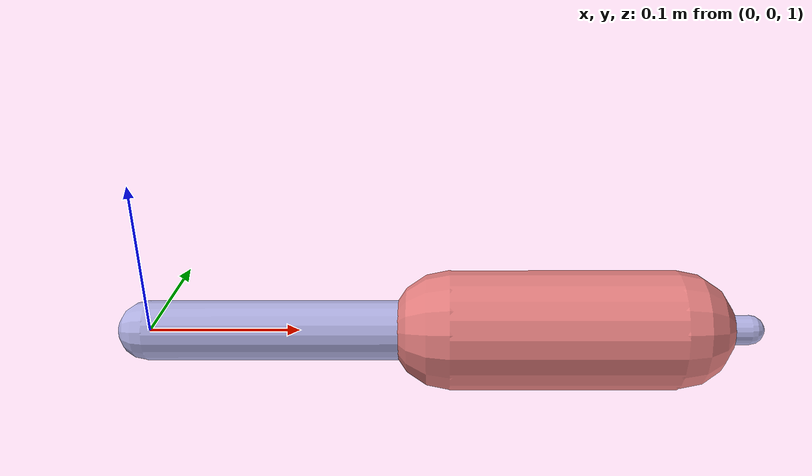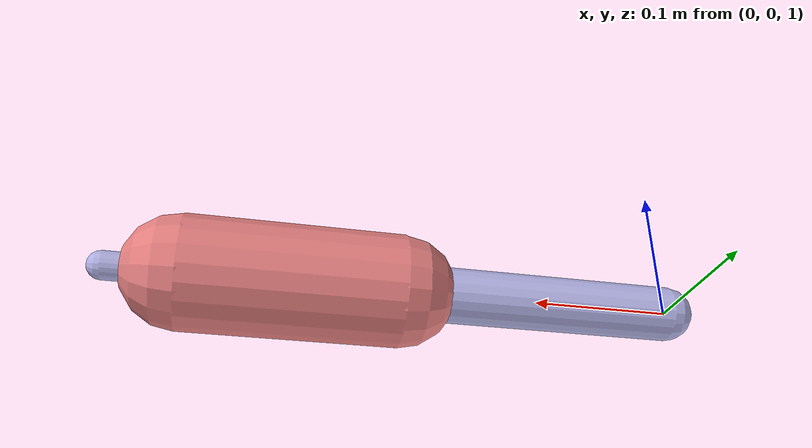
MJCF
<mujoco model="defaults_class_inheritance">
  <compiler angle="degree"/>
  <default>
    <default class="arm_defaults">
      <geom type="capsule" size="0.02" rgba="0.7 0.7 0.9 1"/>
      <joint type="hinge" damping="0.1"/>
      <default class="thick">
        <geom size="0.04" rgba="0.9 0.5 0.5 1"/>
      </default>
      <default class="thin">
        <geom size="0.01"/>
      </default>
    </default>
  </default>
  <worldbody>
    <body name="arm" childclass="arm_defaults" pos="0 0 1">
      <joint name="a0" axis="0 1 0"/>
      <geom name="link0" fromto="0 0 0 0.2 0 0"/>
      <body name="forearm" pos="0.2 0 0">
        <joint name="a1" axis="0 1 0" damping="0.2"/>
        <geom name="link1" class="thick" fromto="0 0 0 0.15 0 0"/>
        <geom name="tip" class="thin" fromto="0.15 0 0 0.2 0 0"/>
      </body>
    </body>
  </worldbody>
</mujoco>
